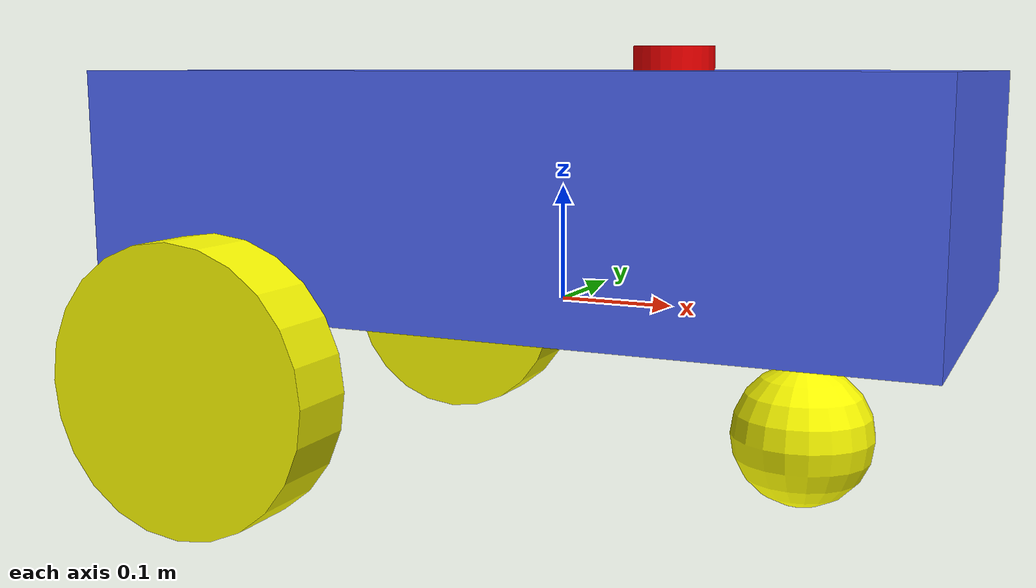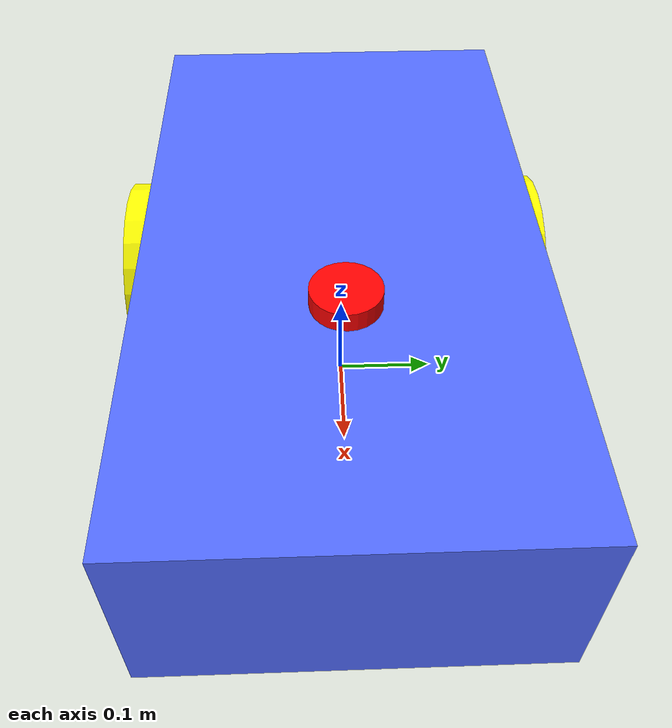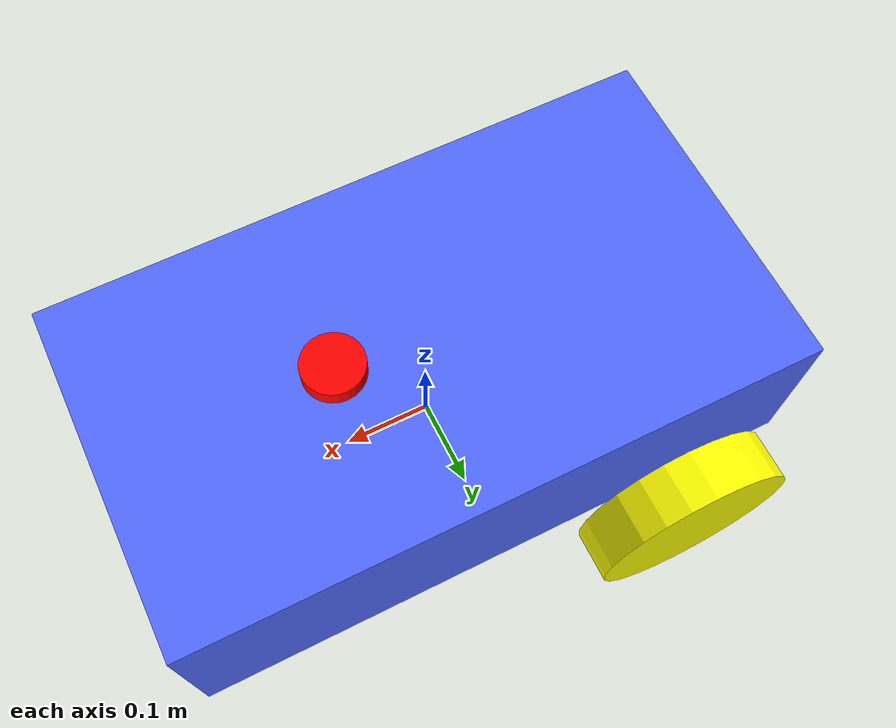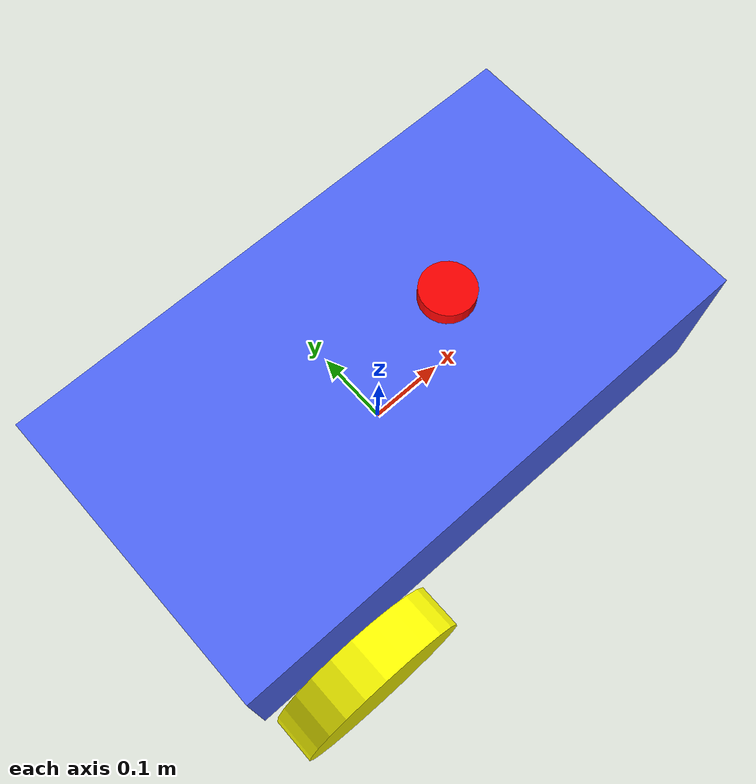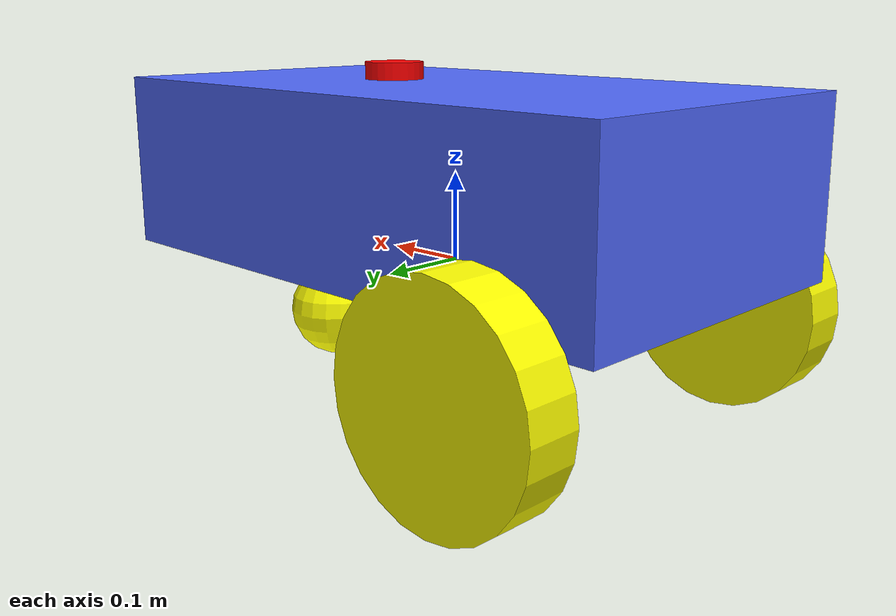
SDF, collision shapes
<?xml version="1.0"?>
<sdf version="1.5">
	<model name="basic_mobile_bot">
		<static>
			false
		</static>
		<!-- ****************** ROBOT BASE FOOTPRINT *************************** -->
		<pose>
			0.0 0.0 0.0 0.0 0.0 0.0
		</pose>
		<link name="base_footprint" />
		<!-- ********************** ROBOT BASE ********************************* -->
		<link name="base_link">
			<collision name="base_collision">
				<pose>
					0 0 0.1 0 0 0
				</pose>
				<geometry>
					<box>
						<size>
							0.70 0.39 0.20
						</size>
					</box>
				</geometry>
			</collision>
			<visual name="base_visual">
				<pose>
					0 0 -0.05 1.5707963267949 0 3.141592654
				</pose>
				<!-- ********************** BASE MY MATERIAL********************************* -->
				<geometry>
					<mesh>
						<uri>
							model://basic_mobile_bot_description/meshes/base.stl
						</uri>
						<scale>
							0.75 0.75 1.0
						</scale>
					</mesh>
				</geometry>
				<material>
					<ambient>
						0.32 0.42 1.0 1.0
					</ambient>
					<diffuse>
						0.32 0.42 1.0 1.0
					</diffuse>
					<specular>
						0.0 0.0 0.0 1.0
					</specular>
					<emissive>
						0.0 0.0 0.0 1.0
					</emissive>
				</material>
			</visual>
		</link>
		<!-- *********************** IMU SENSOR SETUP ************************** -->
		<link name="imu_link">
			<gravity>
				true
			</gravity>
			<sensor name="bmb_imu" type="imu">
				<always_on>
					true
				</always_on>
				<update_rate>
					100
				</update_rate>
				<visualize>
					true
				</visualize>
				<imu>
					<orientation>
						<x>
							<noise type="gaussian">
								<mean>
									0.0
								</mean>
								<stddev>
									2e-3
								</stddev>
							</noise>
						</x>
						<y>
							<noise type="gaussian">
								<mean>
									0.0
								</mean>
								<stddev>
									2e-3
								</stddev>
							</noise>
						</y>
						<z>
							<noise type="gaussian">
								<mean>
									0.0
								</mean>
								<stddev>
									2e-3
								</stddev>
							</noise>
						</z>
					</orientation>
					<angular_velocity>
						<x>
							<noise type="gaussian">
								<mean>
									0.0
								</mean>
								<stddev>
									2e-4
								</stddev>
							</noise>
						</x>
						<y>
							<noise type="gaussian">
								<mean>
									0.0
								</mean>
								<stddev>
									2e-4
								</stddev>
							</noise>
						</y>
						<z>
							<noise type="gaussian">
								<mean>
									0.0
								</mean>
								<stddev>
									2e-4
								</stddev>
							</noise>
						</z>
					</angular_velocity>
					<linear_acceleration>
						<x>
							<noise type="gaussian">
								<mean>
									0.0
								</mean>
								<stddev>
									1.7e-2
								</stddev>
							</noise>
						</x>
						<y>
							<noise type="gaussian">
								<mean>
									0.0
								</mean>
								<stddev>
									1.7e-2
								</stddev>
							</noise>
						</y>
						<z>
							<noise type="gaussian">
								<mean>
									0.0
								</mean>
								<stddev>
									1.7e-2
								</stddev>
							</noise>
						</z>
					</linear_acceleration>
				</imu>
				<plugin name="basic_mobile_bot_imu" filename="libgazebo_ros_imu_sensor.so">
					<initial_orientation_as_reference>
						false
					</initial_orientation_as_reference>
					<frame_name>
						imu_link
					</frame_name>
					<ros>
						<namespace>
							/imu
						</namespace>
						<remapping>
							~/out:=data
						</remapping>
					</ros>
				</plugin>
			</sensor>
		</link>
		<!-- *********************** GPS SETUP ********************************* -->
		<link name="gps_link">
			<sensor name="bmb_gps" type="gps">
				<always_on>
					true
				</always_on>
				<update_rate>
					10.0
				</update_rate>
				<gps>
					<position_sensing>
						<horizontal>
							<noise type="gaussian">
								<mean>
									0.0
								</mean>
								<stddev>
									1e-2
								</stddev>
							</noise>
						</horizontal>
						<vertical>
							<noise type="gaussian">
								<mean>
									0.0
								</mean>
								<stddev>
									1
								</stddev>
							</noise>
						</vertical>
					</position_sensing>
				</gps>
				<plugin name="basic_mobile_bot_gps" filename="libgazebo_ros_gps_sensor.so">
					<ros>
						<remapping>
							~/out:=gps/fix
						</remapping>
					</ros>
				</plugin>
			</sensor>
		</link>
		<!-- ****************************** LIDAR ***************************** -->
		<link name="lidar_link">
			<inertial>
				<pose>
					0.1 0 0.13 0 0 0
				</pose>
				<inertia>
					<ixx>
						0.001
					</ixx>
					<ixy>
						0.000
					</ixy>
					<ixz>
						0.000
					</ixz>
					<iyy>
						0.001
					</iyy>
					<iyz>
						0.000
					</iyz>
					<izz>
						0.001
					</izz>
				</inertia>
				<mass>
					0.114
				</mass>
			</inertial>
			<collision name="lidar_collision">
				<pose>
					0.1 0 0.13 0 0 0
				</pose>
				<geometry>
					<cylinder>
						<radius>
							0.034
						</radius>
						<length>
							0.18
						</length>
					</cylinder>
				</geometry>
			</collision>
			<visual name="lidar_visual">
				<pose>
					0.1 0 0.13 0 0 0
				</pose>
				<geometry>
					<cylinder>
						<radius>
							0.034
						</radius>
						<length>
							0.16
						</length>
					</cylinder>
				</geometry>
				<material>
					<ambient>
						1.0 0.0 0.0 1.0
					</ambient>
					<diffuse>
						1.0 0.0 0.0 1.0
					</diffuse>
					<specular>
						0.0 0.0 0.0 1.0
					</specular>
					<emissive>
						0.0 0.0 0.0 1.0
					</emissive>
				</material>
			</visual>
			<sensor name="lidar" type="ray">
				<pose>
					0.10 0.0 0.225 0 0 0
				</pose>
				<always_on>
					true
				</always_on>
				<visualize>
					false
				</visualize>
				<update_rate>
					5
				</update_rate>
				<ray>
					<scan>
						<horizontal>
							<samples>
								181
							</samples>
							<resolution>
								1.000000
							</resolution>
							<min_angle>
								-3.14159
							</min_angle>
							<max_angle>
								3.14159
							</max_angle>
						</horizontal>
					</scan>
					<range>
						<min>
							0.3
						</min>
						<max>
							15.0
						</max>
						<resolution>
							0.015
						</resolution>
					</range>
					<noise>
						<type>
							gaussian
						</type>
						<mean>
							0.0
						</mean>
						<stddev>
							0.01
						</stddev>
					</noise>
				</ray>
				<plugin name="scan" filename="libgazebo_ros_ray_sensor.so">
					<ros>
						<remapping>
							~/out:=scan
						</remapping>
					</ros>
					<output_type>
						sensor_msgs/LaserScan
					</output_type>
					<frame_name>
						lidar_link
					</frame_name>
				</plugin>
			</sensor>
		</link>
		<!-- *********************** DRIVE WHEELS ****************************** -->
		<link name="drivewhl_l_link">
			<pose>
				-0.221 0.23 -0.05 0 1.570796 1.570796
			</pose>
			<collision name="drivewhl_l_collision">
				<geometry>
					<cylinder>
						<radius>
							0.12
						</radius>
						<length>
							0.06
						</length>
					</cylinder>
				</geometry>
			</collision>
			<visual name="drivewhl_l_visual">
				<geometry>
					<mesh>
						<uri>
							model://basic_mobile_bot_description/meshes/wheel.stl
						</uri>
						<scale>
							1.0 1.0 1.0
						</scale>
					</mesh>
					<cylinder>
						<radius>
							0.12
						</radius>
						<length>
							0.04
						</length>
					</cylinder>
				</geometry>
				<material>
					<ambient>
						1.0 1.0 0.0 1.0
					</ambient>
					<diffuse>
						1.0 1.0 0.0 1.0
					</diffuse>
					<specular>
						0.0 0.0 0.0 1.0
					</specular>
					<emissive>
						0.0 0.0 0.0 1.0
					</emissive>
				</material>
			</visual>
		</link>
		<link name="drivewhl_r_link">
			<pose>
				-0.221 -0.23 -0.05 0 1.570796 1.570796
			</pose>
			<collision name="drivewhl_r_collision">
				<geometry>
					<cylinder>
						<radius>
							0.12
						</radius>
						<length>
							0.06
						</length>
					</cylinder>
				</geometry>
			</collision>
			<visual name="drivewhl_r_visual">
				<geometry>
					<mesh>
						<uri>
							model://basic_mobile_bot_description/meshes/wheel_s.stl
						</uri>
						<scale>
							1.0 1.0 1.0
						</scale>
					</mesh>
					<cylinder>
						<radius>
							0.12
						</radius>
						<length>
							0.04
						</length>
					</cylinder>
				</geometry>
				<material>
					<ambient>
						1.0 1.0 0.0 1.0
					</ambient>
					<diffuse>
						1.0 1.0 0.0 1.0
					</diffuse>
					<specular>
						0.0 0.0 0.0 1.0
					</specular>
					<emissive>
						0.0 0.0 0.0 1.0
					</emissive>
				</material>
			</visual>
		</link>
		<!-- *********************** CASTER WHEEL ****************************** -->
		<link name="front_caster">
			<pose>
				0.217 0 -0.1 0 0 0
			</pose>
			<inertial>
				<inertia>
					<ixx>
						0.001
					</ixx>
					<ixy>
						0.000
					</ixy>
					<ixz>
						0.000
					</ixz>
					<iyy>
						0.001
					</iyy>
					<iyz>
						0.000
					</iyz>
					<izz>
						0.001
					</izz>
				</inertia>
				<mass>
					70.0
				</mass>
			</inertial>
			<collision name="collision">
				<geometry>
					<sphere>
						<radius>
							0.06
						</radius>
					</sphere>
				</geometry>
				<surface>
					<friction>
						<ode>
							<mu>
								0.01
							</mu>
							<mu2>
								0.01
							</mu2>
							<slip1>
								1.0
							</slip1>
							<slip2>
								1.0
							</slip2>
						</ode>
					</friction>
				</surface>
			</collision>
			<visual name="front_caster_visual">
				<geometry>
					<sphere>
						<radius>
							0.06
						</radius>
					</sphere>
				</geometry>
				<material>
					<ambient>
						1.0 1.0 0.0 1.0
					</ambient>
					<diffuse>
						1.0 1.0 0.0 1.0
					</diffuse>
					<specular>
						0.0 0.0 0.0 1.0
					</specular>
					<emissive>
						0.0 0.0 0.0 1.0
					</emissive>
				</material>
			</visual>
		</link>
		<!-- ************************ JOINTS *********************************** -->
		<joint name="base_joint" type="fixed">
			<parent>
				base_footprint
			</parent>
			<child>
				base_link
			</child>
			<pose>
				0 0 0 0 0 0
			</pose>
		</joint>
		<joint name="drivewhl_l_joint" type="revolute">
			<parent>
				base_link
			</parent>
			<child>
				drivewhl_l_link
			</child>
			<pose>
				0 0 0 0 0 0
			</pose>
			<axis>
				<xyz>
					0 0 1
				</xyz>
			</axis>
		</joint>
		<joint name="drivewhl_r_joint" type="revolute">
			<parent>
				base_link
			</parent>
			<child>
				drivewhl_r_link
			</child>
			<pose>
				0 0 0 0 0 0
			</pose>
			<axis>
				<xyz>
					0 0 1
				</xyz>
			</axis>
		</joint>
		<joint name="caster_joint" type="fixed">
			<parent>
				base_link
			</parent>
			<child>
				front_caster
			</child>
			<pose>
				0 0 0 0 0 0
			</pose>
		</joint>
		<joint name="imu_joint" type="fixed">
			<parent>
				base_link
			</parent>
			<child>
				imu_link
			</child>
			<pose>
				0 0 0 0 0 0
			</pose>
		</joint>
		<joint name="gps_joint" type="fixed">
			<parent>
				base_link
			</parent>
			<child>
				gps_link
			</child>
			<pose>
				0 0 0 0 0 0
			</pose>
		</joint>
		<joint name="lidar_joint" type="fixed">
			<parent>
				base_link
			</parent>
			<child>
				lidar_link
			</child>
			<pose>
				0 0 0 0 0 0
			</pose>
		</joint>
		<!-- *********************** WHEEL ODOMETRY *************************** -->
		<plugin name="basic_mobile_bot_diff_drive" filename="libgazebo_ros_diff_drive.so">
			<update_rate>
				30
			</update_rate>
			<!-- wheels -->
			<left_joint>
				drivewhl_l_joint
			</left_joint>
			<right_joint>
				drivewhl_r_joint
			</right_joint>
			<wheel_separation>
				0.52
			</wheel_separation>
			<wheel_diameter>
				0.28
			</wheel_diameter>
			<max_wheel_torque>
				20
			</max_wheel_torque>
			<max_wheel_acceleration>
				1.0
			</max_wheel_acceleration>
			<command_topic>
				cmd_vel
			</command_topic>
			<publish_odom>
				true
			</publish_odom>
			<publish_odom_tf>
				false
			</publish_odom_tf>
			<publish_wheel_tf>
				false
			</publish_wheel_tf>
			<odometry_topic>
				odom
			</odometry_topic>
			<odometry_frame>
				odom
			</odometry_frame>
			<robot_base_frame>
				base_footprint
			</robot_base_frame>
			<odometry_source>
				1
			</odometry_source>
			<ros>
				<remapping>
					odom:=wheel/odometry
				</remapping>
			</ros>
		</plugin>
		<!-- *********************** JOINT STATE PUBLISHER ********************* -->
		<plugin name="basic_mobile_bot_joint_state" filename="libgazebo_ros_joint_state_publisher.so">
			<ros>
				<remapping>
					~/out:=joint_states
				</remapping>
			</ros>
			<update_rate>
				30
			</update_rate>
			<joint_name>
				drivewhl_l_joint
			</joint_name>
			<joint_name>
				drivewhl_r_joint
			</joint_name>
		</plugin>
	</model>
</sdf>
